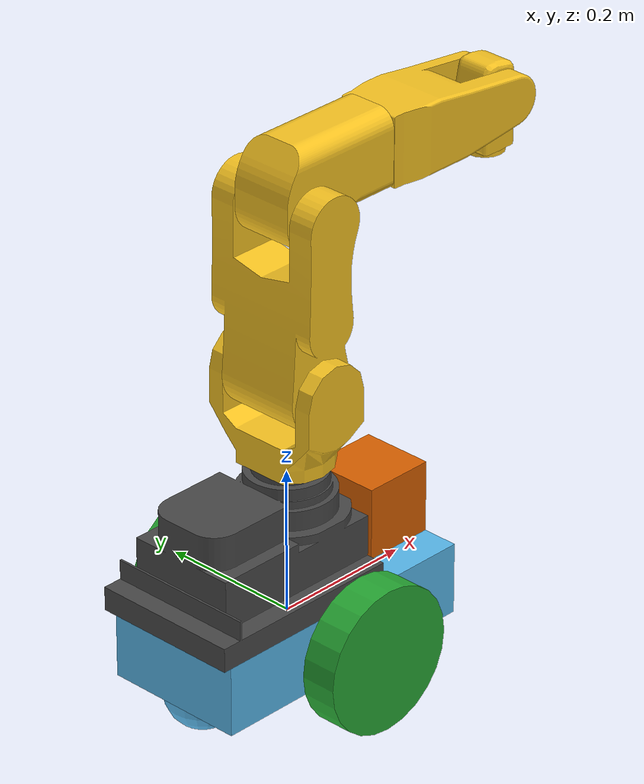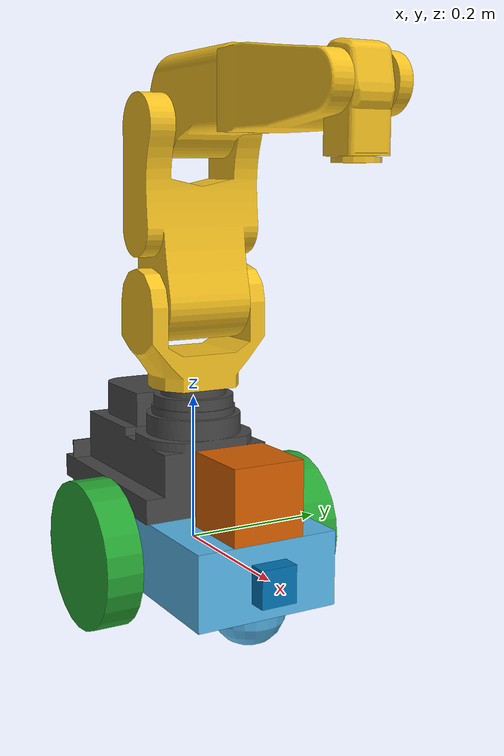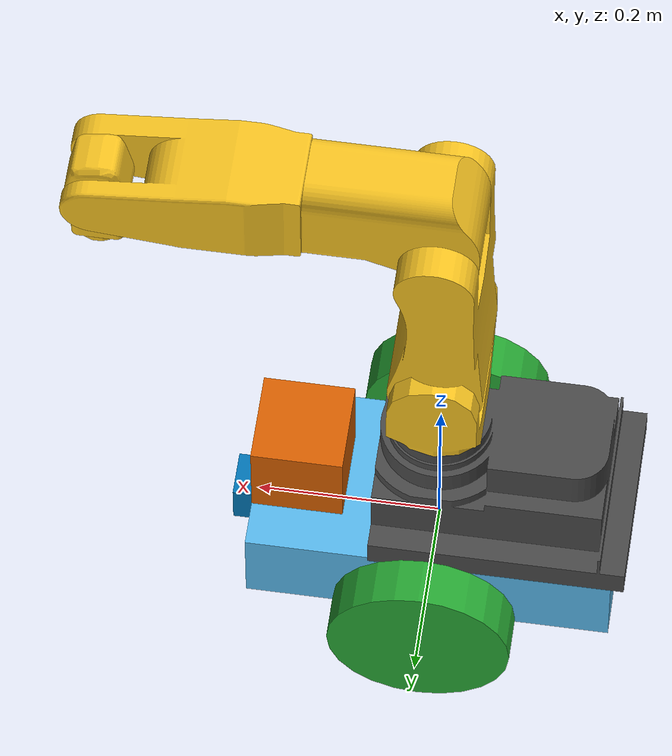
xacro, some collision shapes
<?xml version='1.0'?>

<robot name="my_robot" xmlns:xacro="http://www.ros.org/wiki/xacro">
  <xacro:include filename="$(find my_robot)/urdf/common_materials.xacro"/>
  <xacro:include filename="$(find my_robot)/urdf/my_robot.gazebo" />
  <xacro:include filename="$(find my_robot)/urdf/my_robot.transmission.xacro" />
  <link name="robot_footprint"></link>

  <joint name="robot_footprint_joint" type="fixed">
    <origin xyz="0 0 0" rpy="0 0 0" />
    <parent link="robot_footprint"/>
    <child link="chassis" />
  </joint>

  <link name='chassis'>
    <pose>0 0 0.1 0 0 0</pose>

    <inertial>
      <mass value="15.0"/>
      <origin xyz="0.0 0 0" rpy=" 0 0 0"/>
      <inertia
          ixx="0.1" ixy="0" ixz="0"
          iyy="0.1" iyz="0"
          izz="0.1"
      />
    </inertial>

    <collision name='collision'>
      <origin xyz="0 0 0" rpy=" 0 0 0"/>
      <geometry>
        <box size=".4 .2 .1"/>
      </geometry>
    </collision>

    <visual name='chassis_visual'>
      <origin xyz="0 0 0" rpy=" 0 0 0"/>
      <geometry>
        <box size=".4 .2 .1"/>
      </geometry>
    </visual>

    <collision name='back_caster_collision'>
      <origin xyz="-0.15 0 -0.05" rpy=" 0 0 0"/>
      <geometry>
        <sphere radius="0.0499"/>
      </geometry>
    </collision>

    <visual name='back_caster_visual'>
      <origin xyz="-0.15 0 -0.05" rpy=" 0 0 0"/>
      <geometry>
        <sphere radius="0.05"/>
      </geometry>
    </visual>

    <collision name='front_caster_collision'>
      <origin xyz="0.15 0 -0.05" rpy=" 0 0 0"/>
      <geometry>
        <sphere radius="0.0499"/>
      </geometry>
    </collision>

    <visual name='front_caster_visual'>
      <origin xyz="0.15 0 -0.05" rpy=" 0 0 0"/>
      <geometry>
        <sphere radius="0.05"/>
      </geometry>
    </visual>
  </link>

  <joint type="continuous" name="left_wheel_hinge">
    <origin xyz="0 0.15 0" rpy="0 0 0"/>
    <child link="left_wheel"/>
    <parent link="chassis"/>
    <axis xyz="0 1 0" rpy="0 0 0"/>
    <limit effort="10000" velocity="1000"/>
    <dynamics damping="1.0" friction="1.0"/>
  </joint>

  <link name='left_wheel'>
    <inertial>
      <mass value="5.0"/>
      <origin xyz="0 0 0" rpy="0 1.5707 1.5707"/>
      <inertia
          ixx="0.1" ixy="0" ixz="0"
          iyy="0.1" iyz="0"
          izz="0.1"
      />
    </inertial>

    <collision name='left_wheel_collision'>
      <origin xyz="0 0 0" rpy="0 1.5707 1.5707"/>
      <geometry>
        <cylinder radius="0.1" length="0.05"/>
      </geometry>
    </collision>

    <visual name='left_wheel_visual'>
      <origin xyz="0 0 0" rpy="0 1.5707 1.5707"/>
      <geometry>
        <cylinder radius="0.1" length="0.05"/>
      </geometry>
    </visual>
  </link>

  <joint type="continuous" name="right_wheel_hinge">
    <origin xyz="0 -0.15 0" rpy="0 0 0"/>
    <child link="right_wheel"/>
    <parent link="chassis"/>
    <axis xyz="0 1 0" rpy="0 0 0"/>
    <limit effort="10000" velocity="1000"/>
    <dynamics damping="1.0" friction="1.0"/>
  </joint>

  <link name='right_wheel'>
    <inertial>
      <mass value="5.0"/>
      <origin xyz="0 0 0" rpy="0 1.5707 1.5707"/>
      <inertia
          ixx="0.1" ixy="0" ixz="0"
          iyy="0.1" iyz="0"
          izz="0.1"
      />
    </inertial>

    <collision name='right_wheel_collision'>
      <origin xyz="0 0 0" rpy="0 1.5707 1.5707"/>
      <geometry>
        <cylinder radius="0.1" length="0.05"/>
      </geometry>
    </collision>

    <visual name='right_wheel_visual'>
      <origin xyz="0 0 0" rpy="0 1.5707 1.5707"/>
      <geometry>
        <cylinder radius="0.1" length="0.05"/>
      </geometry>
    </visual>
  </link>
  <link name="camera_link">
    <inertial>
      <origin xyz="0.0 0.0 0.0" rpy="0.0 0.0 0.0"/>
      <mass value="0.1"/>
      <inertia ixx="1e-6" ixy="0.0" ixz="0.0" iyy="1e-6" iyz="0.0" izz="1e-6"/>
    </inertial>
    <visual name="camera_visual">
      <origin xyz="0.0 0.0 0.0" rpy="0.0 0.0 0.0"/>
      <geometry>
        <box size="0.05 0.05 0.05"/>
      </geometry>
    </visual>
    <collision>
      <origin xyz="0.0 0.0 0.0" rpy="0.0 0.0 0.0"/>
      <geometry>
        <box size="0.05 0.05 0.05"/>
      </geometry>
    </collision>
  </link>
  <joint name="camera_joint" type="fixed">
    <origin xyz="0.2 0.0 0.0" rpy="0.0 0.0 0.0"/>
    <parent link="chassis"/>
    <child link="camera_link"/>
    <axis xyz="0 1 0"/>
  </joint>
  <link name="hokuyo">
    <inertial>
      <origin xyz="0.0 0.0 0.0" rpy="0.0 0.0 0.0"/>
      <mass value="1e-5"/>
      <inertia ixx="0.0" ixy="0.0" ixz="0.0" iyy="0.0" iyz="0.0" izz="0.0"/>
    </inertial>
    <visual name="hokuyo_visual">
      <origin xyz="0.0 0.0 0.0" rpy="0.0 0.0 0.0"/>
      <geometry>
        <mesh filename="package://my_robot/meshes/hokuyo.dae"/>
      </geometry>
    </visual>
    <collision>
      <origin xyz="0.0 0.0 0.0" rpy="0.0 0.0 0.0"/>
      <geometry>
        <box size="0.1 0.1 0.1"/>
      </geometry>
    </collision>
  </link>
  <joint name="hokuyo_joint" type="fixed">
    <origin xyz="0.15 0.0 0.1" rpy="0.0 0.0 0.0"/>
    <parent link="chassis"/>
    <child link="hokuyo"/>
    <axis xyz="0 1 0"/>
  </joint>
    <link name="my_robot_base_link">
      <visual>
        <origin xyz="0 0 0" rpy="0 0 0"/>
        <geometry>
          <mesh scale="0.01 0.01 0.01" filename="package://my_robot/meshes/visual/base_link.stl"/>
        </geometry>
        <xacro:material_fanuc_gray28 />
      </visual>
      <collision>
        <origin xyz="0 0 0" rpy="0 0 0"/>
        <geometry>
          <mesh scale="0.01 0.01 0.01" filename="package://my_robot/meshes/collision/base_link.stl"/>
        </geometry>
      </collision>
    </link>
    <link name="my_robot_link_1">
      <visual>
        <origin xyz="0 0 0" rpy="0 0 0"/>
        <geometry>
          <mesh scale="0.01 0.01 0.01" filename="package://my_robot/meshes/visual/link_1.stl"/>
        </geometry>
        <xacro:material_fanuc_yellow />
      </visual>
      <collision>
        <origin xyz="0 0 0" rpy="0 0 0"/>
        <geometry>
          <mesh scale="0.01 0.01 0.01" filename="package://my_robot/meshes/collision/link_1.stl"/>
        </geometry>
      </collision>
    </link>
    <link name="my_robot_link_2">
      <visual>
        <origin xyz="0 0 0" rpy="1.57 0 1.57"/>
        <geometry>
          <mesh scale="0.01 0.01 0.01" filename="package://my_robot/meshes/visual/link_2.stl"/>
        </geometry>
        <xacro:material_fanuc_yellow />
      </visual>
      <collision>
        <origin xyz="0 0 0" rpy="1.57 0 1.57"/>
        <geometry>
          <mesh scale="0.01 0.01 0.01" filename="package://my_robot/meshes/collision/link_2.stl"/>
        </geometry>
      </collision>
    </link>
    <link name="my_robot_link_3">
      <visual>
        <origin xyz="0 0 0" rpy="1.57 0 1.57"/>
        <geometry>
          <mesh scale="0.01 0.01 0.01" filename="package://my_robot/meshes/visual/link_3.stl"/>
        </geometry>
        <xacro:material_fanuc_yellow />
      </visual>
      <collision>
        <origin xyz="0 0 0" rpy="1.57 0 1.57"/>
        <geometry>
          <mesh scale="0.01 0.01 0.01" filename="package://my_robot/meshes/collision/link_3.stl"/>
        </geometry>
      </collision>
    </link>
    <link name="my_robot_link_4">
      <visual>
        <origin xyz="0 0 0" rpy="0 -1.57 0"/>
        <geometry>
          <mesh scale="0.01 0.01 0.01" filename="package://my_robot/meshes/visual/link_4.stl"/>
        </geometry>
        <xacro:material_fanuc_yellow />
      </visual>
      <collision>
        <origin xyz="0 0 0" rpy="0 -1.57 0"/>
        <geometry>
          <mesh scale="0.01 0.01 0.01" filename="package://my_robot/meshes/collision/link_4.stl"/>
        </geometry>
      </collision>
    </link>
        <link name="my_robot_link_5">
      <visual>
        <origin xyz="0 0 0" rpy="0 -1.57 0"/>
        <geometry>
          <mesh scale="0.01 0.01 0.01" filename="package://my_robot/meshes/visual/link_5.stl"/>
        </geometry>
        <xacro:material_fanuc_yellow />
      </visual>
      <collision>
        <origin xyz="0 0 0" rpy="0 -1.57 0"/>
        <geometry>
          <mesh scale="0.01 0.01 0.01" filename="package://my_robot/meshes/collision/link_5.stl"/>
        </geometry>
      </collision>
    </link>
        <link name="my_robot_link_6">
      <visual>
        <origin xyz="0 0 0" rpy="3.14 0 0"/>
        <geometry>
          <mesh scale="0.01 0.01 0.01" filename="package://my_robot/meshes/visual/link_6.stl"/>
        </geometry>
        <xacro:material_fanuc_yellow />
      </visual>
      <collision>
        <origin xyz="0 0 0" rpy="3.14 0 0"/>
        <geometry>
          <mesh scale="0.01 0.01 0.01" filename="package://my_robot/meshes/collision/link_6.stl"/>
        </geometry>
      </collision>
    </link>

    <!-- joints: main serial chain -->
    <joint name="my_robot_arm_base" type="fixed">
      <origin xyz="0.0 0 0.05" rpy="0.0 0.0 -1.5707"/>
      <parent link="chassis"/>
      <child link="my_robot_base_link"/>
      <axis xyz="0.0 0.0 0.0"/>
      <limit lower="0.0" upper="0.0" effort="0.0" velocity="0.0"/>
    </joint>
    <joint name="my_robot_joint_1" type="fixed">
      <origin xyz="0 0 0.175" rpy="0 0 0" />
      <parent link="my_robot_base_link" />
      <child link="my_robot_link_1" />
      <axis xyz="0 0 1" />
      <limit effort="0" lower="-2.965" upper="2.965" velocity="7.85" />
    </joint>
    <joint name="my_robot_joint_2" type="fixed">
      <origin xyz="0 0 0.1065" rpy="0 0 0"/>
      <parent link="my_robot_link_1" />
      <child link="my_robot_link_2" />
      <axis xyz="1 0 0" />
      <limit effort="0" lower="-1.745329" upper="2.530727" velocity="6.63" />
    </joint>
    <joint name="my_robot_joint_3" type="fixed">
      <origin xyz="0 0 0.234" rpy="0 0 0"/>
      <parent link="my_robot_link_2" />
      <child link="my_robot_link_3" />
      <axis xyz="1 0 0" />
      <limit effort="0" lower="-2.450966" upper="4.886922" velocity="9.08" />
    </joint>
    <joint name="my_robot_joint_4" type="fixed">
      <origin xyz="0 0.13 0.032" rpy="0 0 0"/>
      <parent link="my_robot_link_3" />
      <child link="my_robot_link_4" />
      <axis xyz="0 -1 0" />
      <limit effort="0" lower="-2.450966" upper="2.450966" velocity="9.08" />
    </joint>
    <joint name="my_robot_joint_5" type="fixed">
      <origin xyz="-0.0035 0.228575 0" rpy="0 0 0"/>
      <parent link="my_robot_link_4" />
      <child link="my_robot_link_5" />
      <axis xyz="1 0 0" />
      <limit effort="0" lower="-2.450966" upper="2.450966" velocity="9.08" />
    </joint>
    <joint name="my_robot_joint_6" type="fixed">
      <origin xyz="0 0 -0.076" rpy="0 0 0"/>
      <parent link="my_robot_link_5" />
      <child link="my_robot_link_6" />
      <axis xyz="0 0 1" />
      <limit effort="0" lower="-2.450966" upper="2.450966" velocity="9.08" />
    </joint>

    <joint name="camera_optical_joint" type="fixed">
      <origin xyz="0 0 0" rpy="-1.5707 0 -1.5707"/>
      <parent link="camera_link"/>
      <child link="camera_link_optical"/>
    </joint>

    <link name="camera_link_optical">
    </link>

      <gazebo reference="left_wheel">
    <material>Gazebo/Green</material>
    </gazebo>
    <gazebo reference="right_wheel">
    <material>Gazebo/Green</material>
    </gazebo>
</robot>

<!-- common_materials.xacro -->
<robot xmlns:xacro="http://www.ros.org/wiki/xacro">
  <xacro:include filename="$(find my_robot)/urdf/common_colors.xacro"/>

  <xacro:macro name="material_fanuc_yellow">
    <material name="">
      <color rgba="${color_fanuc_yellow}"/>
    </material>
  </xacro:macro>

  <xacro:macro name="material_fanuc_white">
    <material name="">
      <color rgba="${color_fanuc_white}"/>
    </material>
  </xacro:macro>

  <xacro:macro name="material_fanuc_grey">
    <material name="">
      <color rgba="${color_fanuc_grey}"/>
    </material>
  </xacro:macro>

  <xacro:macro name="material_fanuc_gray24">
    <material name="">
      <color rgba="${color_fanuc_gray24}"/>
    </material>
  </xacro:macro>

  <xacro:macro name="material_fanuc_gray28">
    <material name="">
      <color rgba="${color_fanuc_gray28}"/>
    </material>
  </xacro:macro>

  <xacro:macro name="material_fanuc_gray31">
    <material name="">
      <color rgba="${color_fanuc_gray31}"/>
    </material>
  </xacro:macro>

  <xacro:macro name="material_fanuc_gray40">
    <material name="">
      <color rgba="${color_fanuc_gray40}"/>
    </material>
  </xacro:macro>

  <xacro:macro name="material_fanuc_yellow1">
    <material name="">
      <color rgba="${color_fanuc_yellow1}"/>
    </material>
  </xacro:macro>

  <xacro:macro name="material_fanuc_BAB0B0">
    <material name="">
      <color rgba="${color_fanuc_BAB0B0}"/>
    </material>
  </xacro:macro>

  <xacro:macro name="material_fanuc_E6E6E6">
    <material name="">
      <color rgba="${color_fanuc_E6E6E6}"/>
    </material>
  </xacro:macro>

  <xacro:macro name="material_fanuc_00FF73">
    <material name="">
      <color rgba="${color_fanuc_00FF73}"/>
    </material>
  </xacro:macro>

  <xacro:macro name="material_fanuc_black">
    <material name="">
      <color rgba="${color_fanuc_black}"/>
    </material>
  </xacro:macro>

  <xacro:macro name="material_fanuc_greyish">
    <material name="">
      <color rgba="${color_fanuc_greyish}"/>
    </material>
  </xacro:macro>

  <xacro:macro name="material_fanuc_green">
    <material name="">
      <color rgba="${color_fanuc_green}"/>
    </material>
  </xacro:macro>

</robot>

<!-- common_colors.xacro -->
<robot xmlns:xacro="http://www.ros.org/wiki/xacro">

  <!-- RAL 1021: Rape yellow -->
  <xacro:property name="color_fanuc_yellow"   value="0.96 0.76 0.13 1.0" />
  <!-- RAL 9002: Grey white -->
  <xacro:property name="color_fanuc_white"    value="0.86 0.85 0.81 1.0" />
  <!-- RAL 7024: Graphite grey -->
  <xacro:property name="color_fanuc_grey"     value="0.34 0.35 0.36 1.0" />

  <!-- Roboguide colours -->
  <xacro:property name="color_fanuc_gray24"   value="${ 61/255} ${ 61/255} ${ 61/255} 1.0" />
  <xacro:property name="color_fanuc_gray28"   value="${ 71/255} ${ 71/255} ${ 71/255} 1.0" />
  <xacro:property name="color_fanuc_gray31"   value="${ 79/255} ${ 79/255} ${ 79/255} 1.0" />
  <xacro:property name="color_fanuc_gray40"   value="${102/255} ${102/255} ${102/255} 1.0" />
  <!-- #FFFF00 -->
  <xacro:property name="color_fanuc_yellow1"  value="${255/255} ${255/255} ${  0/255} 1.0" />
  <!-- #BAB0B0 -->
  <xacro:property name="color_fanuc_BAB0B0"   value="${186/255} ${176/255} ${176/255} 1.0" />
  <xacro:property name="color_fanuc_E6E6E6"   value="${230/255} ${230/255} ${230/255} 1.0" />
  <!-- #00FF73: 'collaborative green' -->
  <xacro:property name="color_fanuc_00FF73"   value="${  0/255} ${255/255} ${115/255} 1.0" />

  <!-- approximations -->
  <xacro:property name="color_fanuc_black"    value="0.15 0.15 0.15 1.0" />
  <xacro:property name="color_fanuc_greyish"  value="0.75 0.75 0.75 1.0" />
  <xacro:property name="color_fanuc_green"    value="${  0/255} ${155/255} ${ 70/255} 1.0" />

</robot>
